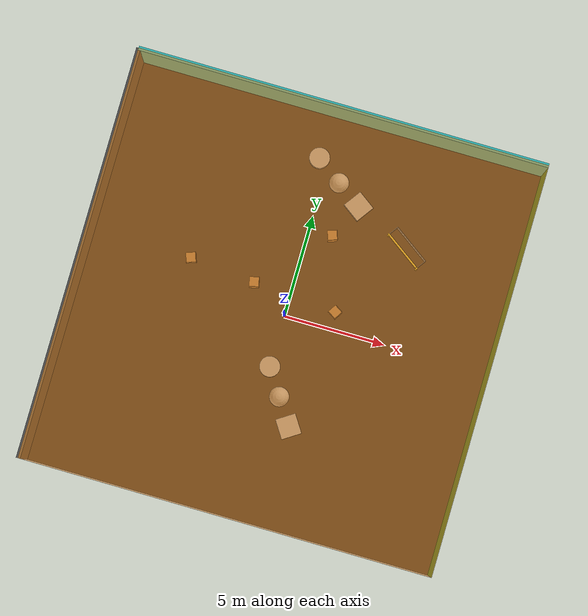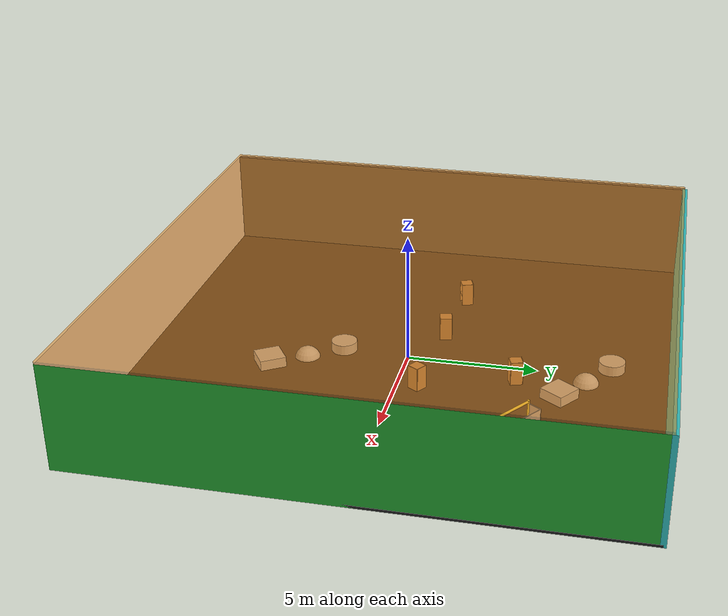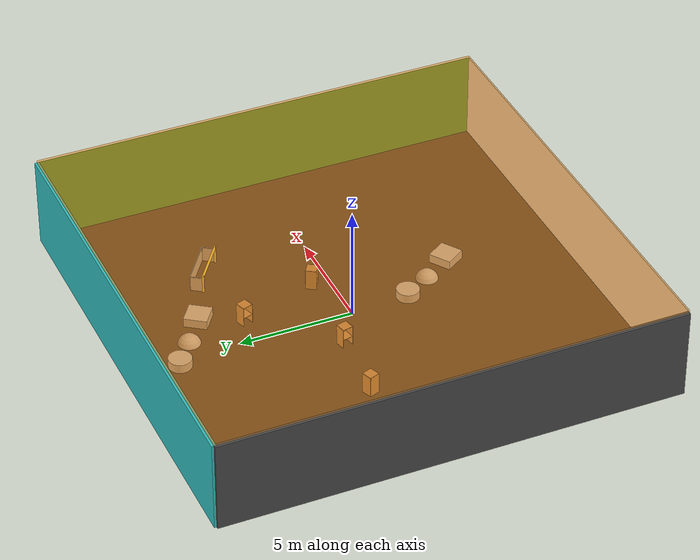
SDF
<sdf version="1.4">
 <world name="default">
  <physics type="ode">
   <max_step_size>0.001</max_step_size>
   <real_time_factor>1</real_time_factor>
   <real_time_update_rate>1000</real_time_update_rate>
   <gravity>0 0 -9.8</gravity>
  </physics>
  <scene><ambient>0.4 0.4 0.4 1</ambient><background>0.7 0.7 0.7 1</background><shadows>1</shadows></scene>
  <model name="Surrounding">
   <static>1</static>
   <link name="Ceiling">
    <collision name="Ceiling_Collision"><geometry><box><size>20 20 0.1</size></box></geometry></collision>
    <visual name="Ceiling_Visual">
     <geometry><box><size>20 20 0.1</size></box></geometry>
     <material>
      <script>
       <uri>file://media/materials/scripts/gazebo.material</uri>
       <name>Gazebo/OrangeTransparent</name>
      </script>
     </material>
    </visual>
    <pose>0 0 4.05 0 0 0</pose>
   </link>
   <link name="Wall_South">
    <collision name="Wall_South_Collision">
     <geometry><box><size>20 0 4</size></box></geometry>
     <pose>0 0 2 0 -0 0</pose>
    </collision>
    <visual name="Wall_South_Visual">
     <pose>0 0 2 0 -0 0</pose>
     <geometry><box><size>20 0 4</size></box></geometry>
     <material>
      <script><uri>file://media/materials/scripts/gazebo.material</uri><name>Gazebo/White</name></script>
     </material>
    </visual>
    <velocity_decay><linear>0</linear><angular>0</angular></velocity_decay>
    <pose>0 -10 0 0 -0 0</pose>
   </link>
   <link name="Wall_East">
    <collision name="Wall_21_Collision">
     <geometry><box><size>20 0 4</size></box></geometry>
     <pose>0 0 2 0 -0 0</pose>
    </collision>
    <visual name="Wall_21_Visual">
     <pose>0 0 2 0 -0 0</pose>
     <geometry><box><size>20 0 4</size></box></geometry>
     <material>
      <script><uri>file://media/materials/scripts/gazebo.material</uri><name>Gazebo/Green</name></script>
     </material>
    </visual>
    <velocity_decay><linear>0</linear><angular>0</angular></velocity_decay>
    <pose>10 0 0 0 -0 1.5708</pose>
   </link>
   <link name="Wall_North">
    <collision name="Wall_22_Collision">
     <geometry><box><size>20 0.2 4</size></box></geometry>
     <pose>0 0 2 0 -0 0</pose>
    </collision>
    <visual name="Wall_22_Visual">
     <pose>0 0 2 0 -0 0</pose>
     <geometry><box><size>20 0.2 4</size></box></geometry>
     <material>
      <script>
       <uri>file://media/materials/scripts/gazebo.material</uri>
       <name>Gazebo/TurquoiseGlowOutline</name>
      </script>
     </material>
    </visual>
    <velocity_decay><linear>0</linear><angular>0</angular></velocity_decay>
    <pose>0 10 0 0 -0 0</pose>
   </link>
   <link name="Wall_West">
    <collision name="Wall_23_Collision">
     <geometry><box><size>20 0.2 4</size></box></geometry>
     <pose>0 0 2 0 -0 0</pose>
    </collision>
    <visual name="Wall_23_Visual">
     <pose>0 0 2 0 -0 0</pose>
     <geometry><box><size>20 0.2 4</size></box></geometry>
     <material>
      <script><uri>file://media/materials/scripts/gazebo.material</uri><name>Gazebo/DarkGrey</name></script>
     </material>
    </visual>
    <velocity_decay><linear>0</linear><angular>0</angular></velocity_decay>
    <pose>-10 0 0 0 0 -1.5708</pose>
   </link>
   <link name="Ground_link">
    <collision name="collision">
     <pose>0 0 .05 0 -0 0</pose>
     <geometry><box><size>20 20 0.1</size></box></geometry>
    </collision>
    <visual name="visual">
     <pose>0 0 .05 0 -0 0</pose>
     <geometry><box><size>20 20 0.1</size></box></geometry>
     <material>
      <script><uri>file://media/materials/scripts/gazebo.material</uri><name>Gazebo/Black</name></script>
     </material>
    </visual>
   </link>
   <static>1</static>
  </model>
  <spherical_coordinates>
   <surface_model>EARTH_WGS84</surface_model>
   <latitude_deg>0</latitude_deg>
   <longitude_deg>0</longitude_deg>
   <elevation>0</elevation>
   <heading_deg>0</heading_deg>
  </spherical_coordinates>
  <light name="lightball_0" type="diffuse">
   <diffuse>0.8 0.8 0.8 1</diffuse>
   <specular>0.2 0.2 0.2 1</specular>
   <attenuation>
    <range>100</range>
    <constant>0.7</constant>
    <linear>0.01</linear>
    <quadratic>0.001</quadratic>
   </attenuation>
   <direction>-0.5 0.1 -0.9</direction>
   <pose>-0.399025685825 8.97437250072 3.77113227346 0 0 0</pose>
  </light>
  <light name="lightball_1" type="diffuse">
   <diffuse>0.8 0.8 0.8 1</diffuse>
   <specular>0.2 0.2 0.2 1</specular>
   <attenuation>
    <range>100</range>
    <constant>0.7</constant>
    <linear>0.01</linear>
    <quadratic>0.001</quadratic>
   </attenuation>
   <direction>-0.5 0.1 -0.9</direction>
   <pose>3.00766773385 9.18506208343 0.688409483961 0 0 0</pose>
  </light>
  <light name="lightball_2" type="diffuse">
   <diffuse>0.8 0.8 0.8 1</diffuse>
   <specular>0.2 0.2 0.2 1</specular>
   <attenuation>
    <range>100</range>
    <constant>0.7</constant>
    <linear>0.01</linear>
    <quadratic>0.001</quadratic>
   </attenuation>
   <direction>-0.5 0.1 -0.9</direction>
   <pose>9.18024866034 8.42797412354 1.49071010507 0 0 0</pose>
  </light>
  <light name="lightball_3" type="diffuse">
   <diffuse>0.8 0.8 0.8 1</diffuse>
   <specular>0.2 0.2 0.2 1</specular>
   <attenuation>
    <range>100</range>
    <constant>0.7</constant>
    <linear>0.01</linear>
    <quadratic>0.001</quadratic>
   </attenuation>
   <direction>-0.5 0.1 -0.9</direction>
   <pose>-6.15863623909 -9.72203325533 2.49851031163 0 0 0</pose>
  </light>
  <light name="lightball_4" type="diffuse">
   <diffuse>0.8 0.8 0.8 1</diffuse>
   <specular>0.2 0.2 0.2 1</specular>
   <attenuation>
    <range>100</range>
    <constant>0.7</constant>
    <linear>0.01</linear>
    <quadratic>0.001</quadratic>
   </attenuation>
   <direction>-0.5 0.1 -0.9</direction>
   <pose>-2.1712948999 3.52998323484 2.01753223939 0 0 0</pose>
  </light>
  <light name="lightball_5" type="diffuse">
   <diffuse>0.8 0.8 0.8 1</diffuse>
   <specular>0.2 0.2 0.2 1</specular>
   <attenuation>
    <range>100</range>
    <constant>0.7</constant>
    <linear>0.01</linear>
    <quadratic>0.001</quadratic>
   </attenuation>
   <direction>-0.5 0.1 -0.9</direction>
   <pose>2.36088430312 -5.19572952584 3.19026757916 0 0 0</pose>
  </light>
  <light name="lightball_6" type="diffuse">
   <diffuse>0.8 0.8 0.8 1</diffuse>
   <specular>0.2 0.2 0.2 1</specular>
   <attenuation>
    <range>100</range>
    <constant>0.7</constant>
    <linear>0.01</linear>
    <quadratic>0.001</quadratic>
   </attenuation>
   <direction>-0.5 0.1 -0.9</direction>
   <pose>9.8205353404 3.96471034085 2.66787889313 0 0 0</pose>
  </light>
  <light name="lightball_7" type="diffuse">
   <diffuse>0.8 0.8 0.8 1</diffuse>
   <specular>0.2 0.2 0.2 1</specular>
   <attenuation>
    <range>100</range>
    <constant>0.7</constant>
    <linear>0.01</linear>
    <quadratic>0.001</quadratic>
   </attenuation>
   <direction>-0.5 0.1 -0.9</direction>
   <pose>1.50167429832 -2.56749887393 0.936664312678 0 0 0</pose>
  </light>
  <light name="lightball_8" type="diffuse">
   <diffuse>0.8 0.8 0.8 1</diffuse>
   <specular>0.2 0.2 0.2 1</specular>
   <attenuation>
    <range>100</range>
    <constant>0.7</constant>
    <linear>0.01</linear>
    <quadratic>0.001</quadratic>
   </attenuation>
   <direction>-0.5 0.1 -0.9</direction>
   <pose>9.80041296175 6.02898813591 2.85367055368 0 0 0</pose>
  </light>
  <light name="lightball_9" type="diffuse">
   <diffuse>0.8 0.8 0.8 1</diffuse>
   <specular>0.2 0.2 0.2 1</specular>
   <attenuation>
    <range>100</range>
    <constant>0.7</constant>
    <linear>0.01</linear>
    <quadratic>0.001</quadratic>
   </attenuation>
   <direction>-0.5 0.1 -0.9</direction>
   <pose>0.0875484485563 2.29764979181 1.01576038273 0 0 0</pose>
  </light>
  <include><uri>model://cabinet</uri><pose>-5.05971560319 1.43063234384 0 0 0 1.92222935041</pose></include>
  <include><uri>model://cabinet</uri><pose>-1.83262187138 1.1438485102 0 0 0 0.212705913445</pose></include>
  <include>
   <uri>model://textured_shapes</uri>
   <pose>0.836972759923 -3.77715572394 0 0 0 0.582625550482</pose>
  </include>
  <include><uri>model://cabinet</uri><pose>2.28511476504 0.82862596938 0 0 0 1.00527082872</pose></include>
  <include><uri>model://cabinet</uri><pose>1.13944739978 4.32034885679 0 0 0 0.326116284909</pose></include>
  <include>
   <uri>model://textured_shapes</uri>
   <pose>0.750031789866 6.90707210564 0 0 0 0.954832533778</pose>
  </include>
  <include>
   <uri>model://robocup_3Dsim_goal</uri>
   <pose>4.58510523441 4.51607465457 0 0 0 0.958655164766</pose>
  </include>
 </world>
</sdf>

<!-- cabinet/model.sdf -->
<sdf version="1.5">
  <model name="cabinet">
    <static>true</static>
    <link name="cabinet_bottom_plate">
      <inertial>
        <pose>0 0 -1 0 0 0</pose>
        <inertia>
          <ixx>2.050000</ixx>
          <ixy>0</ixy>
          <ixz>0</ixz>
          <iyy>2.050000</iyy>
          <iyz>0</iyz>
          <izz>2.050000</izz>
        </inertia>
        <mass>25.000000</mass>
      </inertial>
      <collision name="cabinet_bottom_plate_geom">
        <pose>0 0 0.010000 0 0 0</pose>
        <geometry>
          <box>
            <size>0.450000 0.450000 0.020000</size>
          </box>
        </geometry>
      </collision>
      <visual name="cabinet_bottom_plate_geom_visual">
        <pose>0 0 0.010000 0 0 0</pose>
        <geometry>
          <box>
            <size>0.450000 0.450000 0.020000</size>
          </box>
        </geometry>
        <material>
          <script>
            <uri>model://media/materials/scripts/gazebo.material</uri>
            <name>Gazebo/Wood</name>
          </script>
        </material>
      </visual>
      <collision name="cabinet_bottom_plate_geom_cabinet_back_plate">
        <pose>0.235000 0 0.510000 0 0 0</pose>
        <geometry>
          <box>
            <size>0.020000 0.450000 1.020000</size>
          </box>
        </geometry>
      </collision>
      <visual name="cabinet_bottom_plate_geom_cabinet_back_plate_visual">
        <pose>0.235000 0 0.510000 0 0 0</pose>
        <geometry>
          <box>
            <size>0.020000 0.450000 1.020000</size>
          </box>
        </geometry>
        <material>
          <script>
            <uri>model://media/materials/scripts/gazebo.material</uri>
            <name>Gazebo/Wood</name>
          </script>
        </material>
      </visual>
      <collision name="cabinet_bottom_plate_geom_cabinet_left_plate">
        <pose>0 0.235000 0.510000 0 0 0</pose>
        <geometry>
          <box>
            <size>0.450000 0.020000 1.020000</size>
          </box>
        </geometry>
      </collision>
      <visual name="cabinet_bottom_plate_geom_cabinet_left_plate_visual">
        <pose>0 0.235000 0.510000 0 0 0</pose>
        <geometry>
          <box>
            <size>0.450000 0.020000 1.020000</size>
          </box>
        </geometry>
        <material>
          <script>
            <uri>model://media/materials/scripts/gazebo.material</uri>
            <name>Gazebo/Wood</name>
          </script>
        </material>
      </visual>
      <collision name="cabinet_bottom_plate_geom_cabinet_middle_plate">
        <pose>0 0 0.510000 0 0 0</pose>
        <geometry>
          <box>
            <size>0.450000 0.450000 0.020000</size>
          </box>
        </geometry>
      </collision>
      <visual name="cabinet_bottom_plate_geom_cabinet_middle_plate_visual">
        <pose>0 0 0.510000 0 0 0</pose>
        <geometry>
          <box>
            <size>0.450000 0.450000 0.020000</size>
          </box>
        </geometry>
        <material>
          <script>
            <uri>model://media/materials/scripts/gazebo.material</uri>
            <name>Gazebo/Wood</name>
          </script>
        </material>
      </visual>
      <collision name="cabinet_bottom_plate_geom_cabinet_right_plate">
        <pose>0 -0.235000 0.510000 0 0 0</pose>
        <geometry>
          <box>
            <size>0.450000 0.020000 1.020000</size>
          </box>
        </geometry>
      </collision>
      <visual name="cabinet_bottom_plate_geom_cabinet_right_plate_visual">
        <pose>0 -0.235000 0.510000 0 0 0</pose>
        <geometry>
          <box>
            <size>0.450000 0.020000 1.020000</size>
          </box>
        </geometry>
        <material>
          <script>
            <uri>model://media/materials/scripts/gazebo.material</uri>
            <name>Gazebo/Wood</name>
          </script>
        </material>
      </visual>
      <collision name="cabinet_bottom_plate_geom_cabinet_top_plate">
        <pose>0 0 1.010000 0 0 0</pose>
        <geometry>
          <box>
            <size>0.450000 0.450000 0.020000</size>
          </box>
        </geometry>
      </collision>
      <visual name="cabinet_bottom_plate_geom_cabinet_top_plate_visual">
        <pose>0 0 1.010000 0 0 0</pose>
        <geometry>
          <box>
            <size>0.450000 0.450000 0.020000</size>
          </box>
        </geometry>
        <material>
          <script>
            <uri>model://media/materials/scripts/gazebo.material</uri>
            <name>Gazebo/Wood</name>
          </script>
        </material>
      </visual>
    </link>
  </model>
</sdf>

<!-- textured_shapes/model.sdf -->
<sdf version="1.6">
  <model name="textured_shapes">
    <pose>0 0 0.5 0 0 0</pose>
    <link name="box">
      <pose>0 -1.5 0 0 0 0</pose>
      <collision name="collision">
        <geometry>
          <box>
            <size>1 1 1</size>
          </box>
        </geometry>
      </collision>
      <visual name="visual">
        <geometry>
          <box>
            <size>1 1 1</size>
          </box>
        </geometry>
        <material>
          <script>
            <uri>model://../model_source/models/textured_shapes/materials/scripts</uri>
            <uri>model://../model_source/models/textured_shapes/materials/textures</uri>
            <name>TexturedShape/Squares</name>
          </script>
        </material>
      </visual>
    </link>
    <link name="sphere">
      <collision name="collision">
        <geometry>
          <sphere>
            <radius>0.5</radius>
          </sphere>
        </geometry>
      </collision>
      <visual name="visual">
        <geometry>
          <sphere>
            <radius>0.5</radius>
          </sphere>
        </geometry>
        <material>
          <script>
            <uri>model://../model_source/models/textured_shapes/materials/scripts</uri>
            <uri>model://../model_source/models/textured_shapes/materials/textures</uri>
            <name>TexturedShape/Squares</name>
          </script>
        </material>
      </visual>
    </link>
    <link name="cylinder">
      <pose>0 1.5 0 0 0 0</pose>
      <collision name="collision">
        <geometry>
          <cylinder>
            <radius>0.5</radius>
            <length>1</length>
          </cylinder>
        </geometry>
      </collision>
      <visual name="visual">
        <geometry>
          <cylinder>
            <radius>0.5</radius>
            <length>1</length>
          </cylinder>
        </geometry>
        <material>
          <script>
            <uri>model://../model_source/models/textured_shapes/materials/scripts</uri>
            <uri>model://../model_source/models/textured_shapes/materials/textures</uri>
            <name>TexturedShape/Squares</name>
          </script>
        </material>
      </visual>
    </link>
  </model>
</sdf>

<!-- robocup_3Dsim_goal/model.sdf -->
<sdf version="1.5">
  <model name="robocup_3d_goal">
    <static>true</static>
    <link name="left_post">
      <pose>0 1.05 0.45 0 0 0</pose>
      <collision name="collision">
        <geometry>
          <cylinder>
            <radius>0.05</radius>
            <length>0.9</length>
          </cylinder>
        </geometry>
      </collision>
      <visual name="visual">
        <geometry>
          <cylinder>
            <radius>0.05</radius>
            <length>0.9</length>
          </cylinder>
        </geometry>
        <material>
          <script>
            <uri>file://media/materials/scripts/gazebo.material</uri>
            <name>Gazebo/ZincYellow</name>
          </script>
        </material>
      </visual>
    </link>
    <link name="left_support_horiz_lower">
      <pose>0.30 1.05 0.01 0 0 0</pose>
      <collision name="collision">
        <geometry>
          <box>
            <size>0.50 0.02 0.02</size>
          </box>
        </geometry>
      </collision>
      <visual name="visual">
        <geometry>
          <box>
            <size>0.50 0.02 0.02</size>
          </box>
        </geometry>
        <material>
          <script>
            <uri>file://media/materials/scripts/gazebo.material</uri>
            <name>Gazebo/White</name>
          </script>
        </material>
      </visual>
    </link>
    <link name="left_support_horiz_upper">
      <pose>0.30 1.05 0.79 0 0 0</pose>
      <collision name="collision">
        <geometry>
          <box>
            <size>0.50 0.02 0.02</size>
          </box>
        </geometry>
      </collision>
      <visual name="visual">
        <geometry>
          <box>
            <size>0.50 0.02 0.02</size>
          </box>
        </geometry>
        <material>
          <script>
            <uri>file://media/materials/scripts/gazebo.material</uri>
            <name>Gazebo/White</name>
          </script>
        </material>
      </visual>
    </link>
    <link name="left_support_vertical">
      <pose>0.56 1.05 0.4 0 1.5708 0</pose>
      <collision name="collision">
        <geometry>
          <box>
            <size>0.80 0.02 0.02</size>
          </box>
        </geometry>
      </collision>
      <visual name="visual">
        <geometry>
          <box>
            <size>0.80 0.02 0.02</size>
          </box>
        </geometry>
        <material>
          <script>
            <uri>file://media/materials/scripts/gazebo.material</uri>
            <name>Gazebo/White</name>
          </script>
        </material>
      </visual>
    </link>
    <link name="right_support_horiz_lower">
      <pose>0.30 -1.05 0.01 0 0 0</pose>
      <collision name="collision">
        <geometry>
          <box>
            <size>0.50 0.02 0.02</size>
          </box>
        </geometry>
      </collision>
      <visual name="visual">
        <geometry>
          <box>
            <size>0.50 0.02 0.02</size>
          </box>
        </geometry>
        <material>
          <script>
            <uri>file://media/materials/scripts/gazebo.material</uri>
            <name>Gazebo/White</name>
          </script>
        </material>
      </visual>
    </link>
    <link name="right_support_horiz_upper">
      <pose>0.30 -1.05 0.79 0 0 0</pose>
      <collision name="collision">
        <geometry>
          <box>
            <size>0.50 0.02 0.02</size>
          </box>
        </geometry>
      </collision>
      <visual name="visual">
        <geometry>
          <box>
            <size>0.50 0.02 0.02</size>
          </box>
        </geometry>
        <material>
          <script>
            <uri>file://media/materials/scripts/gazebo.material</uri>
            <name>Gazebo/White</name>
          </script>
        </material>
      </visual>
    </link>
    <link name="right_support_vertical">
      <pose>0.56 -1.05 0.4 0 1.5708 0</pose>
      <collision name="collision">
        <geometry>
          <box>
            <size>0.80 0.02 0.02</size>
          </box>
        </geometry>
      </collision>
      <visual name="visual">
        <geometry>
          <box>
            <size>0.80 0.02 0.02</size>
          </box>
        </geometry>
        <material>
          <script>
            <uri>file://media/materials/scripts/gazebo.material</uri>
            <name>Gazebo/White</name>
          </script>
        </material>
      </visual>
    </link>
    <link name="center_support_horiz_lower">
      <pose>0.56 0 0.01 0 1.5708 0</pose>
      <collision name="collision">
        <geometry>
          <box>
            <size>0.02 2.08 0.02</size>
          </box>
        </geometry>
      </collision>
      <visual name="visual">
        <geometry>
          <box>
            <size>0.02 2.08 0.02</size>
          </box>
        </geometry>
        <material>
          <script>
            <uri>file://media/materials/scripts/gazebo.material</uri>
            <name>Gazebo/White</name>
          </script>
        </material>
      </visual>
    </link>
    <link name="center_support_horiz_upper">
      <pose>0.56 0 0.79 0 1.5708 0</pose>
      <collision name="collision">
        <geometry>
          <box>
            <size>0.02 2.08 0.02</size>
          </box>
        </geometry>
      </collision>
      <visual name="visual">
        <geometry>
          <box>
            <size>0.02 2.08 0.02</size>
          </box>
        </geometry>
        <material>
          <script>
            <uri>file://media/materials/scripts/gazebo.material</uri>
            <name>Gazebo/White</name>
          </script>
        </material>
      </visual>
    </link>
    <link name="right_post">
      <pose>0 -1.05 0.45 0 0 0</pose>
      <collision name="collision">
        <geometry>
          <cylinder>
            <radius>0.05</radius>
            <length>0.9</length>
          </cylinder>
        </geometry>
      </collision>
      <visual name="visual">
        <geometry>
          <cylinder>
            <radius>0.05</radius>
            <length>0.9</length>
          </cylinder>
        </geometry>
        <material>
          <script>
            <uri>file://media/materials/scripts/gazebo.material</uri>
            <name>Gazebo/ZincYellow</name>
          </script>
        </material>
      </visual>
    </link>
    <link name="crossbar">
      <pose>0 0 0.85 1.57 1.57 0</pose>
      <collision name="collision">
        <geometry>
          <cylinder>
            <radius>0.05</radius>
            <length>2.0</length>
          </cylinder>
        </geometry>
      </collision>
      <visual name="visual">
        <geometry>
          <cylinder>
            <radius>0.05</radius>
            <length>2.0</length>
          </cylinder>
        </geometry>
        <material>
          <script>
            <uri>file://media/materials/scripts/gazebo.material</uri>
            <name>Gazebo/ZincYellow</name>
          </script>
        </material>
      </visual>
    </link>
    <link name="center_net">
      <pose>0.56 0 0.40 0 0 0</pose>
      <collision name="collision">
        <geometry>
          <box>
            <size>0.01 2.1 0.80</size>
          </box>
        </geometry>
      </collision>
      <visual name="visual">
        <geometry>
          <box>
            <size>0.01 2.1 0.80</size>
          </box>
        </geometry>
        <material>
          <script>
            <uri>model://../model_source/models/robocup09_spl_field/materials/scripts/</uri>
            <uri>model://../model_source/models/robocup09_spl_field/materials/textures/</uri>
            <name>RoboCup/Net</name>
          </script>
        </material>
      </visual>
    </link>
    <link name="left_net">
      <pose>0.30 1.05 0.40 0 0 0</pose>
      <collision name="collision">
        <geometry>
          <box>
            <size>0.50 0.01 0.76</size>
          </box>
        </geometry>
      </collision>
      <visual name="visual">
        <geometry>
          <box>
            <size>0.50 0.01 0.76</size>
          </box>
        </geometry>
        <material>
          <script>
            <uri>model://../model_source/models/robocup09_spl_field/materials/scripts/</uri>
            <uri>model://../model_source/models/robocup09_spl_field/materials/textures/</uri>
            <name>RoboCup/Net</name>
          </script>
        </material>
      </visual>
    </link>
    <link name="right_net">
      <pose>0.30 -1.05 0.40 0 0 0</pose>
      <collision name="collision">
        <geometry>
          <box>
            <size>0.50 0.01 0.76</size>
          </box>
        </geometry>
      </collision>
      <visual name="visual">
        <geometry>
          <box>
            <size>0.50 0.01 0.76</size>
          </box>
        </geometry>
        <material>
          <script>
            <uri>model://../model_source/models/robocup09_spl_field/materials/scripts/</uri>
            <uri>model://../model_source/models/robocup09_spl_field/materials/textures/</uri>
            <name>RoboCup/Net</name>
          </script>
        </material>
      </visual>
    </link>
  </model>
</sdf>
